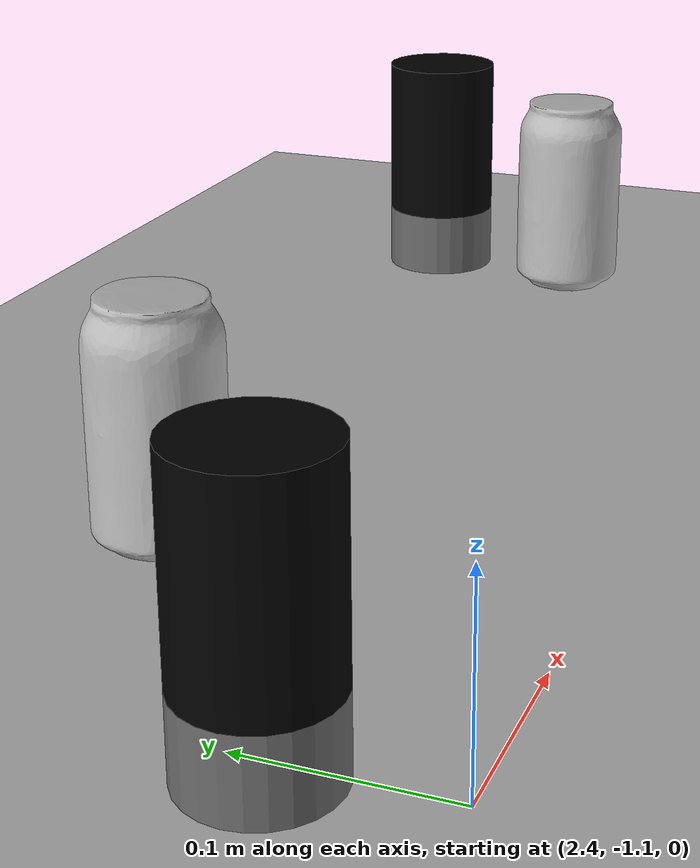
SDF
<sdf version="1.9">
 <world name="default">
  <model name="ground_plane">
   <static>true</static>
   <link name="link">
    <collision name="collision">
     <geometry><plane><normal>0 0 1</normal><size>100 100</size></plane></geometry>
     <surface>
      <contact><collide_bitmask>65535</collide_bitmask></contact>
      <friction><ode><mu>100</mu><mu2>50</mu2></ode></friction>
     </surface>
    </collision>
    <visual name="visual">
     <cast_shadows>false</cast_shadows>
     <geometry><plane><normal>0 0 1</normal><size>100 100</size></plane></geometry>
     <material>
      <ambient>0.3 0.3 0.3 1</ambient>
      <diffuse>0.7 0.7 0.7 1</diffuse>
      <specular>0.01 0.01 0.01 1</specular>
     </material>
    </visual>
    <inertial>
     <mass>1</mass>
     <inertia><ixx>1</ixx><ixy>0</ixy><ixz>0</ixz><iyy>1</iyy><iyz>0</iyz><izz>1</izz></inertia>
    </inertial>
   </link>
  </model>
  <model name="coke_0">
   <pose>2.5460237734025926 -0.8947023490982103 0 0 0 1.3428199899144944</pose>
   <link name="link">
    <inertial>
     <pose>0 0 0.06 0 0 0</pose>
     <mass>0.014</mass>
     <inertia>
      <ixx>0.00055575</ixx>
      <ixy>0</ixy>
      <ixz>0</ixz>
      <iyy>0.00055575</iyy>
      <iyz>0</iyz>
      <izz>0.0001755</izz>
     </inertia>
    </inertial>
    <collision name="collision">
     <pose>0.003937 0.0047244 -0.18 0 0 0</pose>
     <geometry><mesh><uri>coke_can.dae</uri></mesh></geometry>
     <surface>
      <friction><ode><mu>30.0</mu><mu2>30.0</mu2></ode></friction>
      <contact>
       <ode><kp>10000000.0</kp><kd>1.0</kd><min_depth>0.001</min_depth><max_vel>0.1</max_vel></ode>
      </contact>
     </surface>
    </collision>
    <visual name="visual">
     <pose>0.003937 0.0047244 -0.18 0 0 0</pose>
     <geometry><mesh><uri>coke_can.dae</uri></mesh></geometry>
     <plugin filename="ignition-gazebo-label-system" name="ignition::gazebo::systems::Label">
      <label>20</label>
     </plugin>
    </visual>
   </link>
  </model>
  <model name="coke_1">
   <pose>2.9902120447969542 -0.9682349911519692 0 0 0 5.406316495127012</pose>
   <link name="link">
    <inertial>
     <pose>0 0 0.06 0 0 0</pose>
     <mass>0.014</mass>
     <inertia>
      <ixx>0.00055575</ixx>
      <ixy>0</ixy>
      <ixz>0</ixz>
      <iyy>0.00055575</iyy>
      <iyz>0</iyz>
      <izz>0.0001755</izz>
     </inertia>
    </inertial>
    <collision name="collision">
     <pose>0.003937 0.0047244 -0.18 0 0 0</pose>
     <geometry><mesh><uri>coke_can.dae</uri></mesh></geometry>
     <surface>
      <friction><ode><mu>30.0</mu><mu2>30.0</mu2></ode></friction>
      <contact>
       <ode><kp>10000000.0</kp><kd>1.0</kd><min_depth>0.001</min_depth><max_vel>0.1</max_vel></ode>
      </contact>
     </surface>
    </collision>
    <visual name="visual">
     <pose>0.003937 0.0047244 -0.18 0 0 0</pose>
     <geometry><mesh><uri>coke_can.dae</uri></mesh></geometry>
     <plugin filename="ignition-gazebo-label-system" name="ignition::gazebo::systems::Label">
      <label>20</label>
     </plugin>
    </visual>
   </link>
  </model>
  <model name="light_2">
   <pose>2.389768868107743 -1.0196731956115057 0 0 0 0</pose>
   <static>false</static>
   <link name="base">
    <pose>0.0 0.0 0.02 0.0 0 0</pose>
    <collision name="collision">
     <geometry><cylinder><radius>.035</radius><length>.04</length></cylinder></geometry>
    </collision>
    <inertial>
     <mass>10</mass>
     <inertia>
      <ixx>0.004395833333333333</ixx>
      <ixy>0.0</ixy>
      <ixz>0.0</ixz>
      <iyy>0.004395833333333333</iyy>
      <iyz>0.0</iyz>
      <izz>0.006125</izz>
     </inertia>
    </inertial>
    <visual name="visual">
     <geometry><cylinder><radius>.035</radius><length>.04</length></cylinder></geometry>
     <material>
      <ambient>0.4 0.4 0.4 1</ambient>
      <diffuse>0.4 0.4 0.4 1</diffuse>
      <specular>0.4 0.4 0.4 0</specular>
      <emissive>0.6 0.6 0.4 1</emissive>
     </material>
     <plugin filename="ignition-gazebo-label-system" name="ignition::gazebo::systems::Label">
      <label>10</label>
     </plugin>
    </visual>
   </link>
   <link name="light">
    <pose>0 0. 0.09 0 0 0</pose>
    <collision name="collision">
     <geometry><cylinder><radius>.035</radius><length>.1</length></cylinder></geometry>
    </collision>
    <inertial>
     <mass>10</mass>
     <inertia>
      <ixx>0.01139583333333333</ixx>
      <ixy>0.0</ixy>
      <ixz>0.0</ixz>
      <iyy>0.01139583333333333</iyy>
      <iyz>0.0</iyz>
      <izz>0.006125</izz>
     </inertia>
    </inertial>
    <visual name="visual">
     <geometry><cylinder><radius>.035</radius><length>.1</length></cylinder></geometry>
     <material>
      <ambient>0 0 0 1</ambient>
      <diffuse>0 0 0 1</diffuse>
      <specular>0 0 0 0</specular>
      <emissive>1 0.5 0 1</emissive>
     </material>
     <plugin filename="ignition-gazebo-label-system" name="ignition::gazebo::systems::Label">
      <label>10</label>
     </plugin>
    </visual>
   </link>
   <visual name="visual">
    <plugin filename="ignition-gazebo-label-system" name="ignition::gazebo::systems::Label">
     <label>10</label>
    </plugin>
   </visual>
   <joint name="light_joint" type="fixed">
    <pose>0 0 -0.05 .0 0 0</pose>
    <child>light</child>
    <parent>base</parent>
   </joint>
  </model>
  <model name="light_3">
   <pose>3.0132981941327213 -0.8700538743807145 0 0 0 0</pose>
   <static>false</static>
   <link name="base">
    <pose>0.0 0.0 0.02 0.0 0 0</pose>
    <collision name="collision">
     <geometry><cylinder><radius>.035</radius><length>.04</length></cylinder></geometry>
    </collision>
    <inertial>
     <mass>10</mass>
     <inertia>
      <ixx>0.004395833333333333</ixx>
      <ixy>0.0</ixy>
      <ixz>0.0</ixz>
      <iyy>0.004395833333333333</iyy>
      <iyz>0.0</iyz>
      <izz>0.006125</izz>
     </inertia>
    </inertial>
    <visual name="visual">
     <geometry><cylinder><radius>.035</radius><length>.04</length></cylinder></geometry>
     <material>
      <ambient>0.4 0.4 0.4 1</ambient>
      <diffuse>0.4 0.4 0.4 1</diffuse>
      <specular>0.4 0.4 0.4 0</specular>
      <emissive>0.6 0.6 0.4 1</emissive>
     </material>
     <plugin filename="ignition-gazebo-label-system" name="ignition::gazebo::systems::Label">
      <label>10</label>
     </plugin>
    </visual>
   </link>
   <link name="light">
    <pose>0 0. 0.09 0 0 0</pose>
    <collision name="collision">
     <geometry><cylinder><radius>.035</radius><length>.1</length></cylinder></geometry>
    </collision>
    <inertial>
     <mass>10</mass>
     <inertia>
      <ixx>0.01139583333333333</ixx>
      <ixy>0.0</ixy>
      <ixz>0.0</ixz>
      <iyy>0.01139583333333333</iyy>
      <iyz>0.0</iyz>
      <izz>0.006125</izz>
     </inertia>
    </inertial>
    <visual name="visual">
     <geometry><cylinder><radius>.035</radius><length>.1</length></cylinder></geometry>
     <material>
      <ambient>0 0 0 1</ambient>
      <diffuse>0 0 0 1</diffuse>
      <specular>0 0 0 0</specular>
      <emissive>1 0.5 0 1</emissive>
     </material>
     <plugin filename="ignition-gazebo-label-system" name="ignition::gazebo::systems::Label">
      <label>10</label>
     </plugin>
    </visual>
   </link>
   <visual name="visual">
    <plugin filename="ignition-gazebo-label-system" name="ignition::gazebo::systems::Label">
     <label>10</label>
    </plugin>
   </visual>
   <joint name="light_joint" type="fixed">
    <pose>0 0 -0.05 .0 0 0</pose>
    <child>light</child>
    <parent>base</parent>
   </joint>
  </model>
 </world>
</sdf>
